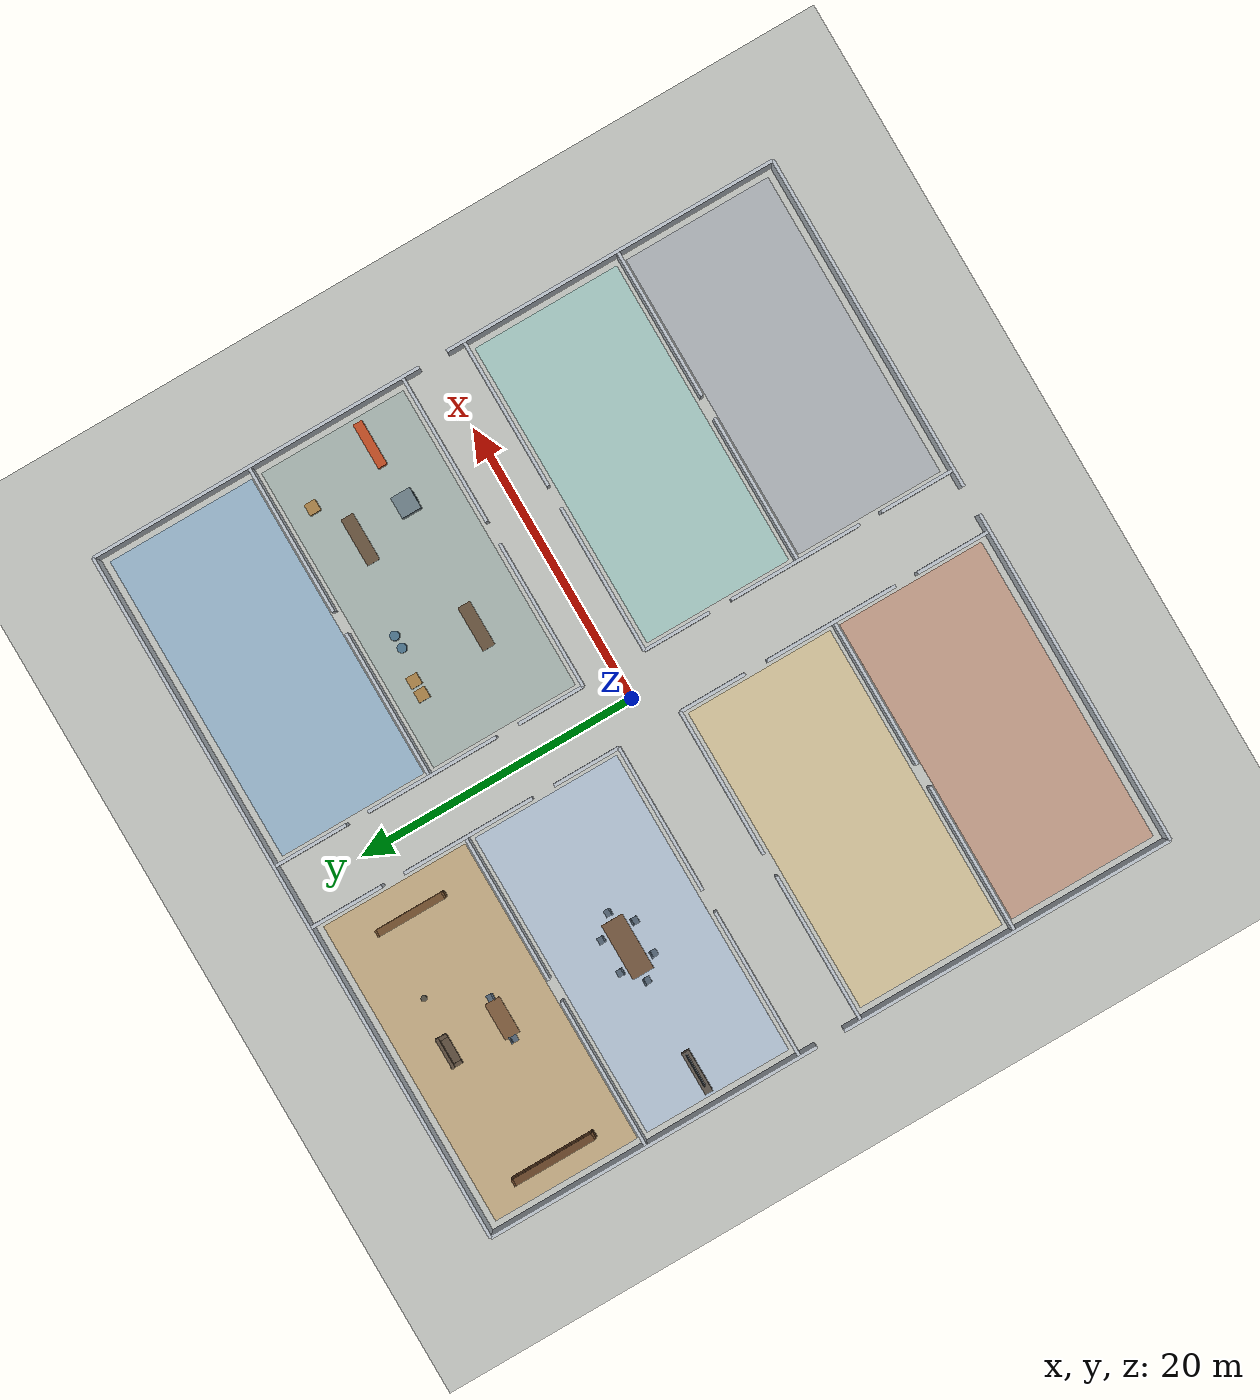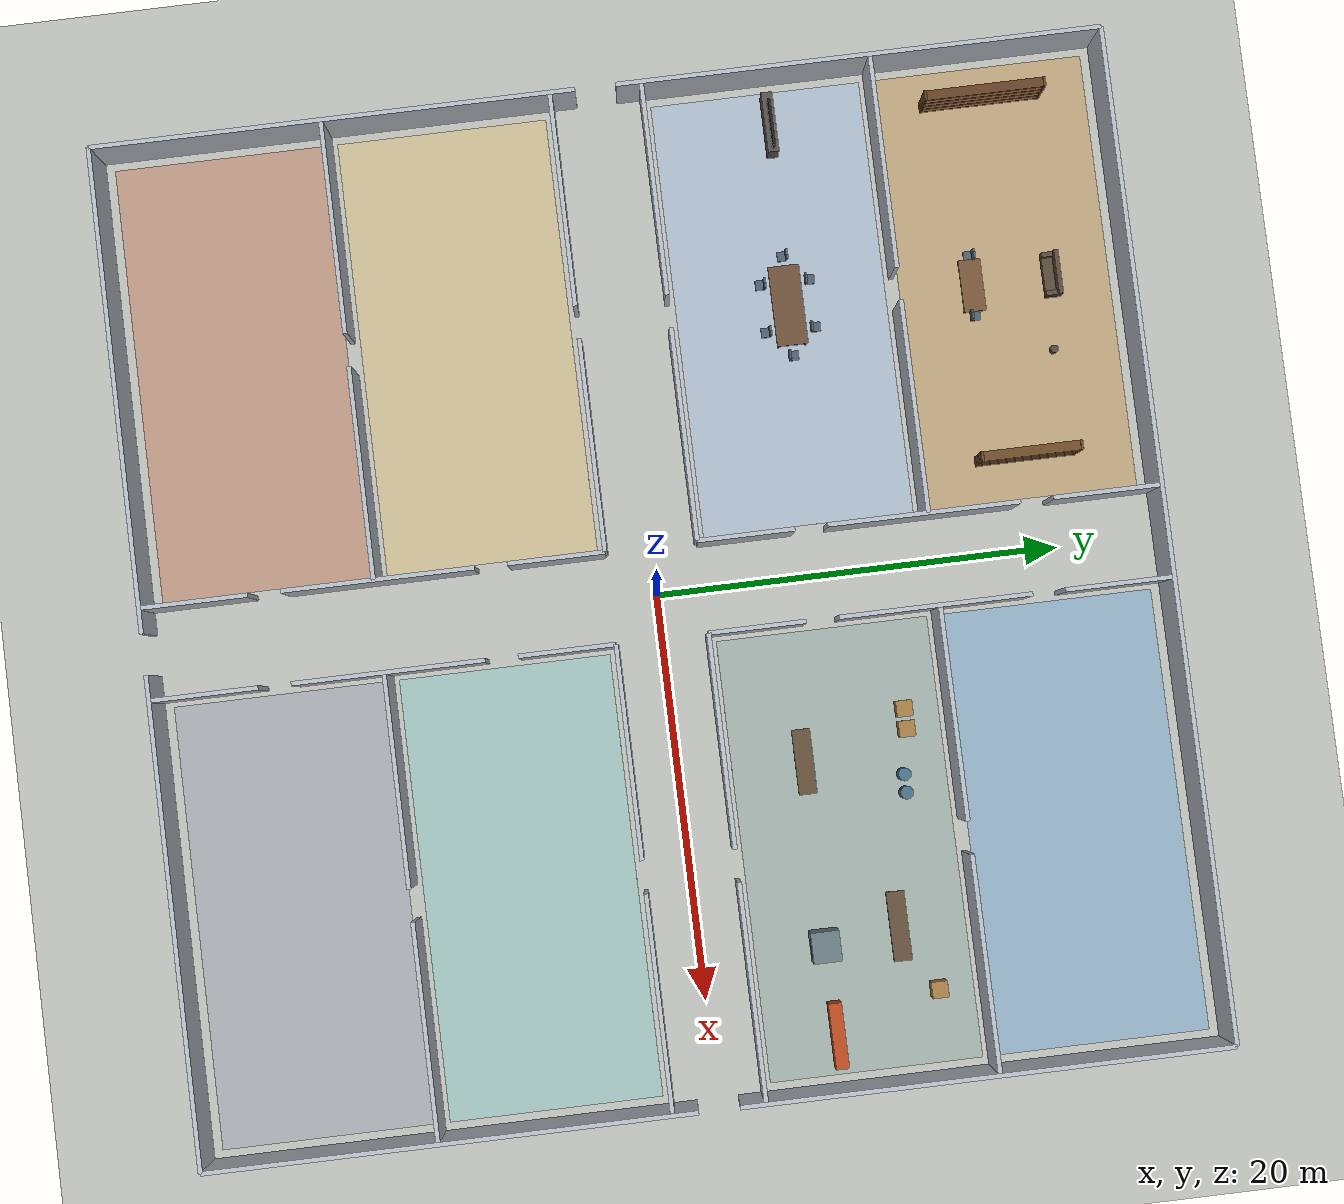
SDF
<sdf version="1.9">
 <world name="default">
  <model name="ground">
   <static>true</static>
   <link name="ground_link">
    <collision name="ground_collision">
     <geometry><plane><normal>0 0 1</normal><size>50 50</size></plane></geometry>
    </collision>
    <visual name="ground_visual">
     <geometry><plane><normal>0 0 1</normal><size>50 50</size></plane></geometry>
     <material><ambient>0.72 0.73 0.71 1</ambient><diffuse>0.72 0.73 0.71 1</diffuse></material>
    </visual>
   </link>
  </model>
  <model name="building_walls">
   <static>true</static>
   <link name="south_outer_01">
    <pose>-12.945 -24.890 1.600 0 0 0.0000</pose>
    <collision name="collision"><geometry><box><size>23.890 0.220 3.200</size></box></geometry></collision>
    <visual name="visual">
     <geometry><box><size>23.890 0.220 3.200</size></box></geometry>
     <material><ambient>0.70 0.73 0.76 1</ambient><diffuse>0.70 0.73 0.76 1</diffuse></material>
    </visual>
   </link>
   <link name="south_outer_02">
    <pose>12.945 -24.890 1.600 0 0 0.0000</pose>
    <collision name="collision"><geometry><box><size>23.890 0.220 3.200</size></box></geometry></collision>
    <visual name="visual">
     <geometry><box><size>23.890 0.220 3.200</size></box></geometry>
     <material><ambient>0.70 0.73 0.76 1</ambient><diffuse>0.70 0.73 0.76 1</diffuse></material>
    </visual>
   </link>
   <link name="north_outer_03">
    <pose>0.000 24.890 1.600 0 0 0.0000</pose>
    <collision name="collision"><geometry><box><size>49.780 0.220 3.200</size></box></geometry></collision>
    <visual name="visual">
     <geometry><box><size>49.780 0.220 3.200</size></box></geometry>
     <material><ambient>0.70 0.73 0.76 1</ambient><diffuse>0.70 0.73 0.76 1</diffuse></material>
    </visual>
   </link>
   <link name="west_outer_04">
    <pose>-24.890 -12.945 1.600 0 0 0.0000</pose>
    <collision name="collision"><geometry><box><size>0.220 23.890 3.200</size></box></geometry></collision>
    <visual name="visual">
     <geometry><box><size>0.220 23.890 3.200</size></box></geometry>
     <material><ambient>0.70 0.73 0.76 1</ambient><diffuse>0.70 0.73 0.76 1</diffuse></material>
    </visual>
   </link>
   <link name="west_outer_05">
    <pose>-24.890 12.945 1.600 0 0 0.0000</pose>
    <collision name="collision"><geometry><box><size>0.220 23.890 3.200</size></box></geometry></collision>
    <visual name="visual">
     <geometry><box><size>0.220 23.890 3.200</size></box></geometry>
     <material><ambient>0.70 0.73 0.76 1</ambient><diffuse>0.70 0.73 0.76 1</diffuse></material>
    </visual>
   </link>
   <link name="east_outer_06">
    <pose>24.890 -12.945 1.600 0 0 0.0000</pose>
    <collision name="collision"><geometry><box><size>0.220 23.890 3.200</size></box></geometry></collision>
    <visual name="visual">
     <geometry><box><size>0.220 23.890 3.200</size></box></geometry>
     <material><ambient>0.70 0.73 0.76 1</ambient><diffuse>0.70 0.73 0.76 1</diffuse></material>
    </visual>
   </link>
   <link name="east_outer_07">
    <pose>24.890 12.945 1.600 0 0 0.0000</pose>
    <collision name="collision"><geometry><box><size>0.220 23.890 3.200</size></box></geometry></collision>
    <visual name="visual">
     <geometry><box><size>0.220 23.890 3.200</size></box></geometry>
     <material><ambient>0.70 0.73 0.76 1</ambient><diffuse>0.70 0.73 0.76 1</diffuse></material>
    </visual>
   </link>
   <link name="west_hall_08">
    <pose>-2.250 -22.190 1.600 0 0 0.0000</pose>
    <collision name="collision"><geometry><box><size>0.220 5.180 3.200</size></box></geometry></collision>
    <visual name="visual">
     <geometry><box><size>0.220 5.180 3.200</size></box></geometry>
     <material><ambient>0.70 0.73 0.76 1</ambient><diffuse>0.70 0.73 0.76 1</diffuse></material>
    </visual>
   </link>
   <link name="west_hall_09">
    <pose>-2.250 -13.300 1.600 0 0 0.0000</pose>
    <collision name="collision"><geometry><box><size>0.220 9.400 3.200</size></box></geometry></collision>
    <visual name="visual">
     <geometry><box><size>0.220 9.400 3.200</size></box></geometry>
     <material><ambient>0.70 0.73 0.76 1</ambient><diffuse>0.70 0.73 0.76 1</diffuse></material>
    </visual>
   </link>
   <link name="west_hall_10">
    <pose>-2.250 -4.625 1.600 0.000 0.000 0.000</pose>
    <collision name="collision"><geometry><box><size>0.220 4.750 3.200</size></box></geometry></collision>
    <visual name="visual">
     <geometry><box><size>0.220 4.750 3.200</size></box></geometry>
     <material><ambient>0.70 0.73 0.76 1</ambient><diffuse>0.70 0.73 0.76 1</diffuse></material>
    </visual>
   </link>
   <link name="west_hall_11">
    <pose>-2.250 13.300 1.600 0 0 0.0000</pose>
    <collision name="collision"><geometry><box><size>0.220 9.400 3.200</size></box></geometry></collision>
    <visual name="visual">
     <geometry><box><size>0.220 9.400 3.200</size></box></geometry>
     <material><ambient>0.70 0.73 0.76 1</ambient><diffuse>0.70 0.73 0.76 1</diffuse></material>
    </visual>
   </link>
   <link name="west_hall_12">
    <pose>-2.250 22.190 1.600 0 0 0.0000</pose>
    <collision name="collision"><geometry><box><size>0.220 5.180 3.200</size></box></geometry></collision>
    <visual name="visual">
     <geometry><box><size>0.220 5.180 3.200</size></box></geometry>
     <material><ambient>0.70 0.73 0.76 1</ambient><diffuse>0.70 0.73 0.76 1</diffuse></material>
    </visual>
   </link>
   <link name="east_hall_13">
    <pose>2.250 -22.190 1.600 0 0 0.0000</pose>
    <collision name="collision"><geometry><box><size>0.220 5.180 3.200</size></box></geometry></collision>
    <visual name="visual">
     <geometry><box><size>0.220 5.180 3.200</size></box></geometry>
     <material><ambient>0.70 0.73 0.76 1</ambient><diffuse>0.70 0.73 0.76 1</diffuse></material>
    </visual>
   </link>
   <link name="east_hall_14">
    <pose>2.250 -13.300 1.600 0 0 0.0000</pose>
    <collision name="collision"><geometry><box><size>0.220 9.400 3.200</size></box></geometry></collision>
    <visual name="visual">
     <geometry><box><size>0.220 9.400 3.200</size></box></geometry>
     <material><ambient>0.70 0.73 0.76 1</ambient><diffuse>0.70 0.73 0.76 1</diffuse></material>
    </visual>
   </link>
   <link name="east_hall_15">
    <pose>2.250 -4.625 1.600 0.000 0.000 0.000</pose>
    <collision name="collision"><geometry><box><size>0.220 4.750 3.200</size></box></geometry></collision>
    <visual name="visual">
     <geometry><box><size>0.220 4.750 3.200</size></box></geometry>
     <material><ambient>0.70 0.73 0.76 1</ambient><diffuse>0.70 0.73 0.76 1</diffuse></material>
    </visual>
   </link>
   <link name="east_hall_16">
    <pose>2.250 13.300 1.600 0 0 0.0000</pose>
    <collision name="collision"><geometry><box><size>0.220 9.400 3.200</size></box></geometry></collision>
    <visual name="visual">
     <geometry><box><size>0.220 9.400 3.200</size></box></geometry>
     <material><ambient>0.70 0.73 0.76 1</ambient><diffuse>0.70 0.73 0.76 1</diffuse></material>
    </visual>
   </link>
   <link name="east_hall_17">
    <pose>2.250 22.190 1.600 0 0 0.0000</pose>
    <collision name="collision"><geometry><box><size>0.220 5.180 3.200</size></box></geometry></collision>
    <visual name="visual">
     <geometry><box><size>0.220 5.180 3.200</size></box></geometry>
     <material><ambient>0.70 0.73 0.76 1</ambient><diffuse>0.70 0.73 0.76 1</diffuse></material>
    </visual>
   </link>
   <link name="south_hall_18">
    <pose>-19.540 -2.250 1.600 0 0 0.0000</pose>
    <collision name="collision"><geometry><box><size>10.480 0.220 3.200</size></box></geometry></collision>
    <visual name="visual">
     <geometry><box><size>10.480 0.220 3.200</size></box></geometry>
     <material><ambient>0.70 0.73 0.76 1</ambient><diffuse>0.70 0.73 0.76 1</diffuse></material>
    </visual>
   </link>
   <link name="south_hall_19">
    <pose>-7.475 -2.250 1.600 0.000 0.000 0.000</pose>
    <collision name="collision"><geometry><box><size>10.450 0.220 3.200</size></box></geometry></collision>
    <visual name="visual">
     <geometry><box><size>10.450 0.220 3.200</size></box></geometry>
     <material><ambient>0.70 0.73 0.76 1</ambient><diffuse>0.70 0.73 0.76 1</diffuse></material>
    </visual>
   </link>
   <link name="south_hall_20">
    <pose>19.540 -2.250 1.600 0 0 0.0000</pose>
    <collision name="collision"><geometry><box><size>10.480 0.220 3.200</size></box></geometry></collision>
    <visual name="visual">
     <geometry><box><size>10.480 0.220 3.200</size></box></geometry>
     <material><ambient>0.70 0.73 0.76 1</ambient><diffuse>0.70 0.73 0.76 1</diffuse></material>
    </visual>
   </link>
   <link name="north_hall_21">
    <pose>-19.540 2.250 1.600 0 0 0.0000</pose>
    <collision name="collision"><geometry><box><size>10.480 0.220 3.200</size></box></geometry></collision>
    <visual name="visual">
     <geometry><box><size>10.480 0.220 3.200</size></box></geometry>
     <material><ambient>0.70 0.73 0.76 1</ambient><diffuse>0.70 0.73 0.76 1</diffuse></material>
    </visual>
   </link>
   <link name="north_hall_22">
    <pose>-7.475 2.250 1.600 0.000 0.000 0.000</pose>
    <collision name="collision"><geometry><box><size>10.450 0.220 3.200</size></box></geometry></collision>
    <visual name="visual">
     <geometry><box><size>10.450 0.220 3.200</size></box></geometry>
     <material><ambient>0.70 0.73 0.76 1</ambient><diffuse>0.70 0.73 0.76 1</diffuse></material>
    </visual>
   </link>
   <link name="north_hall_23">
    <pose>19.540 2.250 1.600 0 0 0.0000</pose>
    <collision name="collision"><geometry><box><size>10.480 0.220 3.200</size></box></geometry></collision>
    <visual name="visual">
     <geometry><box><size>10.480 0.220 3.200</size></box></geometry>
     <material><ambient>0.70 0.73 0.76 1</ambient><diffuse>0.70 0.73 0.76 1</diffuse></material>
    </visual>
   </link>
   <link name="north_partition_west_24">
    <pose>-19.540 13.500 1.600 0 0 0.0000</pose>
    <collision name="collision"><geometry><box><size>10.480 0.220 3.200</size></box></geometry></collision>
    <visual name="visual">
     <geometry><box><size>10.480 0.220 3.200</size></box></geometry>
     <material><ambient>0.70 0.73 0.76 1</ambient><diffuse>0.70 0.73 0.76 1</diffuse></material>
    </visual>
   </link>
   <link name="north_partition_west_25">
    <pose>-7.475 13.500 1.600 0 0 0.0000</pose>
    <collision name="collision"><geometry><box><size>10.450 0.220 3.200</size></box></geometry></collision>
    <visual name="visual">
     <geometry><box><size>10.450 0.220 3.200</size></box></geometry>
     <material><ambient>0.70 0.73 0.76 1</ambient><diffuse>0.70 0.73 0.76 1</diffuse></material>
    </visual>
   </link>
   <link name="north_partition_east_26">
    <pose>7.475 13.500 1.600 0 0 0.0000</pose>
    <collision name="collision"><geometry><box><size>10.450 0.220 3.200</size></box></geometry></collision>
    <visual name="visual">
     <geometry><box><size>10.450 0.220 3.200</size></box></geometry>
     <material><ambient>0.70 0.73 0.76 1</ambient><diffuse>0.70 0.73 0.76 1</diffuse></material>
    </visual>
   </link>
   <link name="north_partition_east_27">
    <pose>19.540 13.500 1.600 0 0 0.0000</pose>
    <collision name="collision"><geometry><box><size>10.480 0.220 3.200</size></box></geometry></collision>
    <visual name="visual">
     <geometry><box><size>10.480 0.220 3.200</size></box></geometry>
     <material><ambient>0.70 0.73 0.76 1</ambient><diffuse>0.70 0.73 0.76 1</diffuse></material>
    </visual>
   </link>
   <link name="south_partition_west_28">
    <pose>-19.540 -13.500 1.600 0 0 0.0000</pose>
    <collision name="collision"><geometry><box><size>10.480 0.220 3.200</size></box></geometry></collision>
    <visual name="visual">
     <geometry><box><size>10.480 0.220 3.200</size></box></geometry>
     <material><ambient>0.70 0.73 0.76 1</ambient><diffuse>0.70 0.73 0.76 1</diffuse></material>
    </visual>
   </link>
   <link name="south_partition_west_29">
    <pose>-7.475 -13.500 1.600 0 0 0.0000</pose>
    <collision name="collision"><geometry><box><size>10.450 0.220 3.200</size></box></geometry></collision>
    <visual name="visual">
     <geometry><box><size>10.450 0.220 3.200</size></box></geometry>
     <material><ambient>0.70 0.73 0.76 1</ambient><diffuse>0.70 0.73 0.76 1</diffuse></material>
    </visual>
   </link>
   <link name="south_partition_east_30">
    <pose>7.475 -13.500 1.600 0 0 0.0000</pose>
    <collision name="collision"><geometry><box><size>10.450 0.220 3.200</size></box></geometry></collision>
    <visual name="visual">
     <geometry><box><size>10.450 0.220 3.200</size></box></geometry>
     <material><ambient>0.70 0.73 0.76 1</ambient><diffuse>0.70 0.73 0.76 1</diffuse></material>
    </visual>
   </link>
   <link name="south_partition_east_31">
    <pose>19.540 -13.500 1.600 0 0 0.0000</pose>
    <collision name="collision"><geometry><box><size>10.480 0.220 3.200</size></box></geometry></collision>
    <visual name="visual">
     <geometry><box><size>10.480 0.220 3.200</size></box></geometry>
     <material><ambient>0.70 0.73 0.76 1</ambient><diffuse>0.70 0.73 0.76 1</diffuse></material>
    </visual>
   </link>
   <link name="west_hall_10_b">
    <pose>-2.250 4.625 1.600 0.000 0.000 0.000</pose>
    <collision name="collision"><geometry><box><size>0.220 4.750 3.200</size></box></geometry></collision>
    <visual name="visual">
     <geometry><box><size>0.220 4.750 3.200</size></box></geometry>
     <material><ambient>0.70 0.73 0.76 1</ambient><diffuse>0.70 0.73 0.76 1</diffuse></material>
    </visual>
   </link>
   <link name="east_hall_15_b">
    <pose>2.250 4.625 1.600 0.000 0.000 0.000</pose>
    <collision name="collision"><geometry><box><size>0.220 4.750 3.200</size></box></geometry></collision>
    <visual name="visual">
     <geometry><box><size>0.220 4.750 3.200</size></box></geometry>
     <material><ambient>0.70 0.73 0.76 1</ambient><diffuse>0.70 0.73 0.76 1</diffuse></material>
    </visual>
   </link>
   <link name="south_hall_19_b">
    <pose>7.475 -2.250 1.600 0.000 0.000 0.000</pose>
    <collision name="collision"><geometry><box><size>10.450 0.220 3.200</size></box></geometry></collision>
    <visual name="visual">
     <geometry><box><size>10.450 0.220 3.200</size></box></geometry>
     <material><ambient>0.70 0.73 0.76 1</ambient><diffuse>0.70 0.73 0.76 1</diffuse></material>
    </visual>
   </link>
   <link name="north_hall_22_b">
    <pose>7.475 2.250 1.600 0.000 0.000 0.000</pose>
    <collision name="collision"><geometry><box><size>10.450 0.220 3.200</size></box></geometry></collision>
    <visual name="visual">
     <geometry><box><size>10.450 0.220 3.200</size></box></geometry>
     <material><ambient>0.70 0.73 0.76 1</ambient><diffuse>0.70 0.73 0.76 1</diffuse></material>
    </visual>
   </link>
  </model>
  <model name="room_floor_accents">
   <static>true</static>
   <link name="meeting_room_floor">
    <pose>-13.500 7.900 0.004 0 0 0.0000</pose>
    <visual name="visual">
     <geometry><box><size>21.800 10.500 0.008</size></box></geometry>
     <material><ambient>0.66 0.72 0.78 1</ambient><diffuse>0.66 0.72 0.78 1</diffuse></material>
    </visual>
   </link>
   <link name="library_floor">
    <pose>-13.500 19.100 0.004 0 0 0.0000</pose>
    <visual name="visual">
     <geometry><box><size>21.800 10.500 0.008</size></box></geometry>
     <material><ambient>0.72 0.63 0.48 1</ambient><diffuse>0.72 0.63 0.48 1</diffuse></material>
    </visual>
   </link>
   <link name="workshop_floor">
    <pose>13.500 7.900 0.004 0 0 0.0000</pose>
    <visual name="visual">
     <geometry><box><size>21.800 10.500 0.008</size></box></geometry>
     <material><ambient>0.62 0.67 0.65 1</ambient><diffuse>0.62 0.67 0.65 1</diffuse></material>
    </visual>
   </link>
   <link name="server_lab_floor">
    <pose>13.500 19.100 0.004 0 0 0.0000</pose>
    <visual name="visual">
     <geometry><box><size>21.800 10.500 0.008</size></box></geometry>
     <material><ambient>0.56 0.67 0.75 1</ambient><diffuse>0.56 0.67 0.75 1</diffuse></material>
    </visual>
   </link>
   <link name="kitchen_floor">
    <pose>-13.500 -7.900 0.004 0 0 0.0000</pose>
    <visual name="visual">
     <geometry><box><size>21.800 10.500 0.008</size></box></geometry>
     <material><ambient>0.78 0.72 0.57 1</ambient><diffuse>0.78 0.72 0.57 1</diffuse></material>
    </visual>
   </link>
   <link name="lounge_floor">
    <pose>-13.500 -19.100 0.004 0 0 0.0000</pose>
    <visual name="visual">
     <geometry><box><size>21.800 10.500 0.008</size></box></geometry>
     <material><ambient>0.72 0.58 0.50 1</ambient><diffuse>0.72 0.58 0.50 1</diffuse></material>
    </visual>
   </link>
   <link name="clinic_floor">
    <pose>13.500 -7.900 0.004 0 0 0.0000</pose>
    <visual name="visual">
     <geometry><box><size>21.800 10.500 0.008</size></box></geometry>
     <material><ambient>0.61 0.74 0.72 1</ambient><diffuse>0.61 0.74 0.72 1</diffuse></material>
    </visual>
   </link>
   <link name="warehouse_floor">
    <pose>13.500 -19.100 0.004 0 0 0.0000</pose>
    <visual name="visual">
     <geometry><box><size>21.800 10.500 0.008</size></box></geometry>
     <material><ambient>0.64 0.66 0.68 1</ambient><diffuse>0.64 0.66 0.68 1</diffuse></material>
    </visual>
   </link>
  </model>
  <model name="meeting_room_furniture">
   <static>true</static>
   <link name="conference_table_top">
    <pose>-13.500 8.200 0.720 0 0 0.0000</pose>
    <collision name="collision"><geometry><box><size>4.000 1.550 0.120</size></box></geometry></collision>
    <visual name="visual">
     <geometry><box><size>4.000 1.550 0.120</size></box></geometry>
     <material><ambient>0.42 0.31 0.22 1</ambient><diffuse>0.42 0.31 0.22 1</diffuse></material>
    </visual>
   </link>
   <link name="conference_table_leg_0_0">
    <pose>-15.400 7.525 0.330 0 0 0.0000</pose>
    <collision name="collision"><geometry><box><size>0.100 0.100 0.660</size></box></geometry></collision>
    <visual name="visual">
     <geometry><box><size>0.100 0.100 0.660</size></box></geometry>
     <material><ambient>0.30 0.28 0.25 1</ambient><diffuse>0.30 0.28 0.25 1</diffuse></material>
    </visual>
   </link>
   <link name="conference_table_leg_0_1">
    <pose>-15.400 8.875 0.330 0 0 0.0000</pose>
    <collision name="collision"><geometry><box><size>0.100 0.100 0.660</size></box></geometry></collision>
    <visual name="visual">
     <geometry><box><size>0.100 0.100 0.660</size></box></geometry>
     <material><ambient>0.30 0.28 0.25 1</ambient><diffuse>0.30 0.28 0.25 1</diffuse></material>
    </visual>
   </link>
   <link name="conference_table_leg_1_0">
    <pose>-11.600 7.525 0.330 0 0 0.0000</pose>
    <collision name="collision"><geometry><box><size>0.100 0.100 0.660</size></box></geometry></collision>
    <visual name="visual">
     <geometry><box><size>0.100 0.100 0.660</size></box></geometry>
     <material><ambient>0.30 0.28 0.25 1</ambient><diffuse>0.30 0.28 0.25 1</diffuse></material>
    </visual>
   </link>
   <link name="conference_table_leg_1_1">
    <pose>-11.600 8.875 0.330 0 0 0.0000</pose>
    <collision name="collision"><geometry><box><size>0.100 0.100 0.660</size></box></geometry></collision>
    <visual name="visual">
     <geometry><box><size>0.100 0.100 0.660</size></box></geometry>
     <material><ambient>0.30 0.28 0.25 1</ambient><diffuse>0.30 0.28 0.25 1</diffuse></material>
    </visual>
   </link>
   <link name="meeting_chair_0_seat">
    <pose>-16.000 8.200 0.520 0 0 0.0000</pose>
    <collision name="collision"><geometry><box><size>0.480 0.460 0.100</size></box></geometry></collision>
    <visual name="visual">
     <geometry><box><size>0.480 0.460 0.100</size></box></geometry>
     <material><ambient>0.30 0.36 0.42 1</ambient><diffuse>0.30 0.36 0.42 1</diffuse></material>
    </visual>
   </link>
   <link name="meeting_chair_0_back">
    <pose>-16.000 8.420 0.910 0 0 0.0000</pose>
    <collision name="collision"><geometry><box><size>0.480 0.100 0.680</size></box></geometry></collision>
    <visual name="visual">
     <geometry><box><size>0.480 0.100 0.680</size></box></geometry>
     <material><ambient>0.30 0.36 0.42 1</ambient><diffuse>0.30 0.36 0.42 1</diffuse></material>
    </visual>
   </link>
   <link name="meeting_chair_1_seat">
    <pose>-14.700 6.950 0.520 0 0 0.0000</pose>
    <collision name="collision"><geometry><box><size>0.480 0.460 0.100</size></box></geometry></collision>
    <visual name="visual">
     <geometry><box><size>0.480 0.460 0.100</size></box></geometry>
     <material><ambient>0.30 0.36 0.42 1</ambient><diffuse>0.30 0.36 0.42 1</diffuse></material>
    </visual>
   </link>
   <link name="meeting_chair_1_back">
    <pose>-14.700 7.170 0.910 0 0 0.0000</pose>
    <collision name="collision"><geometry><box><size>0.480 0.100 0.680</size></box></geometry></collision>
    <visual name="visual">
     <geometry><box><size>0.480 0.100 0.680</size></box></geometry>
     <material><ambient>0.30 0.36 0.42 1</ambient><diffuse>0.30 0.36 0.42 1</diffuse></material>
    </visual>
   </link>
   <link name="meeting_chair_2_seat">
    <pose>-12.300 6.950 0.520 0 0 0.0000</pose>
    <collision name="collision"><geometry><box><size>0.480 0.460 0.100</size></box></geometry></collision>
    <visual name="visual">
     <geometry><box><size>0.480 0.460 0.100</size></box></geometry>
     <material><ambient>0.30 0.36 0.42 1</ambient><diffuse>0.30 0.36 0.42 1</diffuse></material>
    </visual>
   </link>
   <link name="meeting_chair_2_back">
    <pose>-12.300 7.170 0.910 0 0 0.0000</pose>
    <collision name="collision"><geometry><box><size>0.480 0.100 0.680</size></box></geometry></collision>
    <visual name="visual">
     <geometry><box><size>0.480 0.100 0.680</size></box></geometry>
     <material><ambient>0.30 0.36 0.42 1</ambient><diffuse>0.30 0.36 0.42 1</diffuse></material>
    </visual>
   </link>
   <link name="meeting_chair_3_seat">
    <pose>-11.000 8.200 0.520 0 0 3.1416</pose>
    <collision name="collision"><geometry><box><size>0.480 0.460 0.100</size></box></geometry></collision>
    <visual name="visual">
     <geometry><box><size>0.480 0.460 0.100</size></box></geometry>
     <material><ambient>0.30 0.36 0.42 1</ambient><diffuse>0.30 0.36 0.42 1</diffuse></material>
    </visual>
   </link>
   <link name="meeting_chair_3_back">
    <pose>-11.000 7.980 0.910 0 0 3.1416</pose>
    <collision name="collision"><geometry><box><size>0.480 0.100 0.680</size></box></geometry></collision>
    <visual name="visual">
     <geometry><box><size>0.480 0.100 0.680</size></box></geometry>
     <material><ambient>0.30 0.36 0.42 1</ambient><diffuse>0.30 0.36 0.42 1</diffuse></material>
    </visual>
   </link>
   <link name="meeting_chair_4_seat">
    <pose>-14.700 9.450 0.520 0 0 3.1416</pose>
    <collision name="collision"><geometry><box><size>0.480 0.460 0.100</size></box></geometry></collision>
    <visual name="visual">
     <geometry><box><size>0.480 0.460 0.100</size></box></geometry>
     <material><ambient>0.30 0.36 0.42 1</ambient><diffuse>0.30 0.36 0.42 1</diffuse></material>
    </visual>
   </link>
   <link name="meeting_chair_4_back">
    <pose>-14.700 9.230 0.910 0 0 3.1416</pose>
    <collision name="collision"><geometry><box><size>0.480 0.100 0.680</size></box></geometry></collision>
    <visual name="visual">
     <geometry><box><size>0.480 0.100 0.680</size></box></geometry>
     <material><ambient>0.30 0.36 0.42 1</ambient><diffuse>0.30 0.36 0.42 1</diffuse></material>
    </visual>
   </link>
   <link name="meeting_chair_5_seat">
    <pose>-12.300 9.450 0.520 0 0 3.1416</pose>
    <collision name="collision"><geometry><box><size>0.480 0.460 0.100</size></box></geometry></collision>
    <visual name="visual">
     <geometry><box><size>0.480 0.460 0.100</size></box></geometry>
     <material><ambient>0.30 0.36 0.42 1</ambient><diffuse>0.30 0.36 0.42 1</diffuse></material>
    </visual>
   </link>
   <link name="meeting_chair_5_back">
    <pose>-12.300 9.230 0.910 0 0 3.1416</pose>
    <collision name="collision"><geometry><box><size>0.480 0.100 0.680</size></box></geometry></collision>
    <visual name="visual">
     <geometry><box><size>0.480 0.100 0.680</size></box></geometry>
     <material><ambient>0.30 0.36 0.42 1</ambient><diffuse>0.30 0.36 0.42 1</diffuse></material>
    </visual>
   </link>
   <link name="meeting_credenza">
    <pose>-22.600 8.400 0.700 0 0 1.5708</pose>
    <collision name="collision"><geometry><box><size>0.550 3.000 1.400</size></box></geometry></collision>
    <visual name="visual">
     <geometry><box><size>0.550 3.000 1.400</size></box></geometry>
     <material><ambient>0.34 0.31 0.28 1</ambient><diffuse>0.34 0.31 0.28 1</diffuse></material>
    </visual>
   </link>
   <link name="meeting_display">
    <pose>-22.400 8.400 1.750 0 0 1.5708</pose>
    <collision name="collision"><geometry><box><size>0.120 2.300 1.100</size></box></geometry></collision>
    <visual name="visual">
     <geometry><box><size>0.120 2.300 1.100</size></box></geometry>
     <material><ambient>0.10 0.12 0.14 1</ambient><diffuse>0.10 0.12 0.14 1</diffuse></material>
    </visual>
   </link>
  </model>
  <model name="library_furniture">
   <static>true</static>
   <link name="library_shelf_west_shelf_0">
    <pose>-22.700 19.000 0.200 0 0 1.5708</pose>
    <collision name="collision"><geometry><box><size>6.000 0.480 0.100</size></box></geometry></collision>
    <visual name="visual">
     <geometry><box><size>6.000 0.480 0.100</size></box></geometry>
     <material><ambient>0.38 0.25 0.14 1</ambient><diffuse>0.38 0.25 0.14 1</diffuse></material>
    </visual>
   </link>
   <link name="library_shelf_west_shelf_1">
    <pose>-22.700 19.000 0.750 0 0 1.5708</pose>
    <collision name="collision"><geometry><box><size>6.000 0.480 0.100</size></box></geometry></collision>
    <visual name="visual">
     <geometry><box><size>6.000 0.480 0.100</size></box></geometry>
     <material><ambient>0.38 0.25 0.14 1</ambient><diffuse>0.38 0.25 0.14 1</diffuse></material>
    </visual>
   </link>
   <link name="library_shelf_west_shelf_2">
    <pose>-22.700 19.000 1.300 0 0 1.5708</pose>
    <collision name="collision"><geometry><box><size>6.000 0.480 0.100</size></box></geometry></collision>
    <visual name="visual">
     <geometry><box><size>6.000 0.480 0.100</size></box></geometry>
     <material><ambient>0.38 0.25 0.14 1</ambient><diffuse>0.38 0.25 0.14 1</diffuse></material>
    </visual>
   </link>
   <link name="library_shelf_west_shelf_3">
    <pose>-22.700 19.000 1.850 0 0 1.5708</pose>
    <collision name="collision"><geometry><box><size>6.000 0.480 0.100</size></box></geometry></collision>
    <visual name="visual">
     <geometry><box><size>6.000 0.480 0.100</size></box></geometry>
     <material><ambient>0.38 0.25 0.14 1</ambient><diffuse>0.38 0.25 0.14 1</diffuse></material>
    </visual>
   </link>
   <link name="library_shelf_west_shelf_4">
    <pose>-22.700 19.000 2.400 0 0 1.5708</pose>
    <collision name="collision"><geometry><box><size>6.000 0.480 0.100</size></box></geometry></collision>
    <visual name="visual">
     <geometry><box><size>6.000 0.480 0.100</size></box></geometry>
     <material><ambient>0.38 0.25 0.14 1</ambient><diffuse>0.38 0.25 0.14 1</diffuse></material>
    </visual>
   </link>
   <link name="library_shelf_west_side_0">
    <pose>-22.700 16.060 1.250 0 0 1.5708</pose>
    <collision name="collision"><geometry><box><size>0.120 0.480 2.500</size></box></geometry></collision>
    <visual name="visual">
     <geometry><box><size>0.120 0.480 2.500</size></box></geometry>
     <material><ambient>0.38 0.25 0.14 1</ambient><diffuse>0.38 0.25 0.14 1</diffuse></material>
    </visual>
   </link>
   <link name="library_shelf_west_side_1">
    <pose>-22.700 21.940 1.250 0 0 1.5708</pose>
    <collision name="collision"><geometry><box><size>0.120 0.480 2.500</size></box></geometry></collision>
    <visual name="visual">
     <geometry><box><size>0.120 0.480 2.500</size></box></geometry>
     <material><ambient>0.38 0.25 0.14 1</ambient><diffuse>0.38 0.25 0.14 1</diffuse></material>
    </visual>
   </link>
   <link name="library_shelf_east_shelf_0">
    <pose>-4.700 19.000 0.200 0 0 1.5708</pose>
    <collision name="collision"><geometry><box><size>5.000 0.480 0.100</size></box></geometry></collision>
    <visual name="visual">
     <geometry><box><size>5.000 0.480 0.100</size></box></geometry>
     <material><ambient>0.42 0.29 0.16 1</ambient><diffuse>0.42 0.29 0.16 1</diffuse></material>
    </visual>
   </link>
   <link name="library_shelf_east_shelf_1">
    <pose>-4.700 19.000 0.750 0 0 1.5708</pose>
    <collision name="collision"><geometry><box><size>5.000 0.480 0.100</size></box></geometry></collision>
    <visual name="visual">
     <geometry><box><size>5.000 0.480 0.100</size></box></geometry>
     <material><ambient>0.42 0.29 0.16 1</ambient><diffuse>0.42 0.29 0.16 1</diffuse></material>
    </visual>
   </link>
   <link name="library_shelf_east_shelf_2">
    <pose>-4.700 19.000 1.300 0 0 1.5708</pose>
    <collision name="collision"><geometry><box><size>5.000 0.480 0.100</size></box></geometry></collision>
    <visual name="visual">
     <geometry><box><size>5.000 0.480 0.100</size></box></geometry>
     <material><ambient>0.42 0.29 0.16 1</ambient><diffuse>0.42 0.29 0.16 1</diffuse></material>
    </visual>
   </link>
   <link name="library_shelf_east_shelf_3">
    <pose>-4.700 19.000 1.850 0 0 1.5708</pose>
    <collision name="collision"><geometry><box><size>5.000 0.480 0.100</size></box></geometry></collision>
    <visual name="visual">
     <geometry><box><size>5.000 0.480 0.100</size></box></geometry>
     <material><ambient>0.42 0.29 0.16 1</ambient><diffuse>0.42 0.29 0.16 1</diffuse></material>
    </visual>
   </link>
   <link name="library_shelf_east_shelf_4">
    <pose>-4.700 19.000 2.400 0 0 1.5708</pose>
    <collision name="collision"><geometry><box><size>5.000 0.480 0.100</size></box></geometry></collision>
    <visual name="visual">
     <geometry><box><size>5.000 0.480 0.100</size></box></geometry>
     <material><ambient>0.42 0.29 0.16 1</ambient><diffuse>0.42 0.29 0.16 1</diffuse></material>
    </visual>
   </link>
   <link name="library_shelf_east_side_0">
    <pose>-4.700 16.560 1.250 0 0 1.5708</pose>
    <collision name="collision"><geometry><box><size>0.120 0.480 2.500</size></box></geometry></collision>
    <visual name="visual">
     <geometry><box><size>0.120 0.480 2.500</size></box></geometry>
     <material><ambient>0.42 0.29 0.16 1</ambient><diffuse>0.42 0.29 0.16 1</diffuse></material>
    </visual>
   </link>
   <link name="library_shelf_east_side_1">
    <pose>-4.700 21.440 1.250 0 0 1.5708</pose>
    <collision name="collision"><geometry><box><size>0.120 0.480 2.500</size></box></geometry></collision>
    <visual name="visual">
     <geometry><box><size>0.120 0.480 2.500</size></box></geometry>
     <material><ambient>0.42 0.29 0.16 1</ambient><diffuse>0.42 0.29 0.16 1</diffuse></material>
    </visual>
   </link>
   <link name="reading_table_top">
    <pose>-13.400 17.400 0.660 0 0 0.0000</pose>
    <collision name="collision"><geometry><box><size>2.600 1.100 0.120</size></box></geometry></collision>
    <visual name="visual">
     <geometry><box><size>2.600 1.100 0.120</size></box></geometry>
     <material><ambient>0.46 0.33 0.21 1</ambient><diffuse>0.46 0.33 0.21 1</diffuse></material>
    </visual>
   </link>
   <link name="reading_table_leg_0_0">
    <pose>-14.600 16.950 0.300 0 0 0.0000</pose>
    <collision name="collision"><geometry><box><size>0.100 0.100 0.600</size></box></geometry></collision>
    <visual name="visual">
     <geometry><box><size>0.100 0.100 0.600</size></box></geometry>
     <material><ambient>0.30 0.28 0.25 1</ambient><diffuse>0.30 0.28 0.25 1</diffuse></material>
    </visual>
   </link>
   <link name="reading_table_leg_0_1">
    <pose>-14.600 17.850 0.300 0 0 0.0000</pose>
    <collision name="collision"><geometry><box><size>0.100 0.100 0.600</size></box></geometry></collision>
    <visual name="visual">
     <geometry><box><size>0.100 0.100 0.600</size></box></geometry>
     <material><ambient>0.30 0.28 0.25 1</ambient><diffuse>0.30 0.28 0.25 1</diffuse></material>
    </visual>
   </link>
   <link name="reading_table_leg_1_0">
    <pose>-12.200 16.950 0.300 0 0 0.0000</pose>
    <collision name="collision"><geometry><box><size>0.100 0.100 0.600</size></box></geometry></collision>
    <visual name="visual">
     <geometry><box><size>0.100 0.100 0.600</size></box></geometry>
     <material><ambient>0.30 0.28 0.25 1</ambient><diffuse>0.30 0.28 0.25 1</diffuse></material>
    </visual>
   </link>
   <link name="reading_table_leg_1_1">
    <pose>-12.200 17.850 0.300 0 0 0.0000</pose>
    <collision name="collision"><geometry><box><size>0.100 0.100 0.600</size></box></geometry></collision>
    <visual name="visual">
     <geometry><box><size>0.100 0.100 0.600</size></box></geometry>
     <material><ambient>0.30 0.28 0.25 1</ambient><diffuse>0.30 0.28 0.25 1</diffuse></material>
    </visual>
   </link>
   <link name="reading_chair_a_seat">
    <pose>-14.900 17.400 0.520 0 0 0.0000</pose>
    <collision name="collision"><geometry><box><size>0.480 0.460 0.100</size></box></geometry></collision>
    <visual name="visual">
     <geometry><box><size>0.480 0.460 0.100</size></box></geometry>
     <material><ambient>0.30 0.36 0.42 1</ambient><diffuse>0.30 0.36 0.42 1</diffuse></material>
    </visual>
   </link>
   <link name="reading_chair_a_back">
    <pose>-14.900 17.620 0.910 0 0 0.0000</pose>
    <collision name="collision"><geometry><box><size>0.480 0.100 0.680</size></box></geometry></collision>
    <visual name="visual">
     <geometry><box><size>0.480 0.100 0.680</size></box></geometry>
     <material><ambient>0.30 0.36 0.42 1</ambient><diffuse>0.30 0.36 0.42 1</diffuse></material>
    </visual>
   </link>
   <link name="reading_chair_b_seat">
    <pose>-11.900 17.400 0.520 0 0 3.1416</pose>
    <collision name="collision"><geometry><box><size>0.480 0.460 0.100</size></box></geometry></collision>
    <visual name="visual">
     <geometry><box><size>0.480 0.460 0.100</size></box></geometry>
     <material><ambient>0.30 0.36 0.42 1</ambient><diffuse>0.30 0.36 0.42 1</diffuse></material>
    </visual>
   </link>
   <link name="reading_chair_b_back">
    <pose>-11.900 17.180 0.910 0 0 3.1416</pose>
    <collision name="collision"><geometry><box><size>0.480 0.100 0.680</size></box></geometry></collision>
    <visual name="visual">
     <geometry><box><size>0.480 0.100 0.680</size></box></geometry>
     <material><ambient>0.30 0.36 0.42 1</ambient><diffuse>0.30 0.36 0.42 1</diffuse></material>
    </visual>
   </link>
   <link name="library_sofa_seat">
    <pose>-13.500 21.400 0.400 0 0 0.0000</pose>
    <collision name="collision"><geometry><box><size>2.200 0.820 0.380</size></box></geometry></collision>
    <visual name="visual">
     <geometry><box><size>2.200 0.820 0.380</size></box></geometry>
     <material><ambient>0.34 0.28 0.22 1</ambient><diffuse>0.34 0.28 0.22 1</diffuse></material>
    </visual>
   </link>
   <link name="library_sofa_back">
    <pose>-13.500 21.650 0.830 0 0 0.0000</pose>
    <collision name="collision"><geometry><box><size>2.200 0.220 0.860</size></box></geometry></collision>
    <visual name="visual">
     <geometry><box><size>2.200 0.220 0.860</size></box></geometry>
     <material><ambient>0.34 0.28 0.22 1</ambient><diffuse>0.34 0.28 0.22 1</diffuse></material>
    </visual>
   </link>
   <link name="library_sofa_arm_l">
    <pose>-14.460 21.400 0.620 0 0 0.0000</pose>
    <collision name="collision"><geometry><box><size>0.240 0.820 0.580</size></box></geometry></collision>
    <visual name="visual">
     <geometry><box><size>0.240 0.820 0.580</size></box></geometry>
     <material><ambient>0.34 0.28 0.22 1</ambient><diffuse>0.34 0.28 0.22 1</diffuse></material>
    </visual>
   </link>
   <link name="library_sofa_arm_r">
    <pose>-12.540 21.400 0.620 0 0 0.0000</pose>
    <collision name="collision"><geometry><box><size>0.240 0.820 0.580</size></box></geometry></collision>
    <visual name="visual">
     <geometry><box><size>0.240 0.820 0.580</size></box></geometry>
     <material><ambient>0.34 0.28 0.22 1</ambient><diffuse>0.34 0.28 0.22 1</diffuse></material>
    </visual>
   </link>
   <link name="reading_lamp_base">
    <pose>-9.800 21.100 0.220 0 0 0.0000</pose>
    <collision name="collision">
     <geometry><cylinder><radius>0.200</radius><length>0.440</length></cylinder></geometry>
    </collision>
    <visual name="visual">
     <geometry><cylinder><radius>0.200</radius><length>0.440</length></cylinder></geometry>
     <material><ambient>0.30 0.29 0.25 1</ambient><diffuse>0.30 0.29 0.25 1</diffuse></material>
    </visual>
   </link>
  </model>
  <model name="workshop_furniture">
   <static>true</static>
   <link name="workbench_a_top">
    <pose>9.000 6.200 0.820 0 0 0.0000</pose>
    <collision name="collision"><geometry><box><size>3.200 0.900 0.120</size></box></geometry></collision>
    <visual name="visual">
     <geometry><box><size>3.200 0.900 0.120</size></box></geometry>
     <material><ambient>0.38 0.30 0.22 1</ambient><diffuse>0.38 0.30 0.22 1</diffuse></material>
    </visual>
   </link>
   <link name="workbench_a_leg_0_0">
    <pose>7.500 5.850 0.380 0 0 0.0000</pose>
    <collision name="collision"><geometry><box><size>0.100 0.100 0.760</size></box></geometry></collision>
    <visual name="visual">
     <geometry><box><size>0.100 0.100 0.760</size></box></geometry>
     <material><ambient>0.30 0.28 0.25 1</ambient><diffuse>0.30 0.28 0.25 1</diffuse></material>
    </visual>
   </link>
   <link name="workbench_a_leg_0_1">
    <pose>7.500 6.550 0.380 0 0 0.0000</pose>
    <collision name="collision"><geometry><box><size>0.100 0.100 0.760</size></box></geometry></collision>
    <visual name="visual">
     <geometry><box><size>0.100 0.100 0.760</size></box></geometry>
     <material><ambient>0.30 0.28 0.25 1</ambient><diffuse>0.30 0.28 0.25 1</diffuse></material>
    </visual>
   </link>
   <link name="workbench_a_leg_1_0">
    <pose>10.500 5.850 0.380 0 0 0.0000</pose>
    <collision name="collision"><geometry><box><size>0.100 0.100 0.760</size></box></geometry></collision>
    <visual name="visual">
     <geometry><box><size>0.100 0.100 0.760</size></box></geometry>
     <material><ambient>0.30 0.28 0.25 1</ambient><diffuse>0.30 0.28 0.25 1</diffuse></material>
    </visual>
   </link>
   <link name="workbench_a_leg_1_1">
    <pose>10.500 6.550 0.380 0 0 0.0000</pose>
    <collision name="collision"><geometry><box><size>0.100 0.100 0.760</size></box></geometry></collision>
    <visual name="visual">
     <geometry><box><size>0.100 0.100 0.760</size></box></geometry>
     <material><ambient>0.30 0.28 0.25 1</ambient><diffuse>0.30 0.28 0.25 1</diffuse></material>
    </visual>
   </link>
   <link name="workbench_b_top">
    <pose>17.500 9.800 0.820 0 0 0.0000</pose>
    <collision name="collision"><geometry><box><size>3.400 0.900 0.120</size></box></geometry></collision>
    <visual name="visual">
     <geometry><box><size>3.400 0.900 0.120</size></box></geometry>
     <material><ambient>0.38 0.30 0.22 1</ambient><diffuse>0.38 0.30 0.22 1</diffuse></material>
    </visual>
   </link>
   <link name="workbench_b_leg_0_0">
    <pose>15.900 9.450 0.380 0 0 0.0000</pose>
    <collision name="collision"><geometry><box><size>0.100 0.100 0.760</size></box></geometry></collision>
    <visual name="visual">
     <geometry><box><size>0.100 0.100 0.760</size></box></geometry>
     <material><ambient>0.30 0.28 0.25 1</ambient><diffuse>0.30 0.28 0.25 1</diffuse></material>
    </visual>
   </link>
   <link name="workbench_b_leg_0_1">
    <pose>15.900 10.150 0.380 0 0 0.0000</pose>
    <collision name="collision"><geometry><box><size>0.100 0.100 0.760</size></box></geometry></collision>
    <visual name="visual">
     <geometry><box><size>0.100 0.100 0.760</size></box></geometry>
     <material><ambient>0.30 0.28 0.25 1</ambient><diffuse>0.30 0.28 0.25 1</diffuse></material>
    </visual>
   </link>
   <link name="workbench_b_leg_1_0">
    <pose>19.100 9.450 0.380 0 0 0.0000</pose>
    <collision name="collision"><geometry><box><size>0.100 0.100 0.760</size></box></geometry></collision>
    <visual name="visual">
     <geometry><box><size>0.100 0.100 0.760</size></box></geometry>
     <material><ambient>0.30 0.28 0.25 1</ambient><diffuse>0.30 0.28 0.25 1</diffuse></material>
    </visual>
   </link>
   <link name="workbench_b_leg_1_1">
    <pose>19.100 10.150 0.380 0 0 0.0000</pose>
    <collision name="collision"><geometry><box><size>0.100 0.100 0.760</size></box></geometry></collision>
    <visual name="visual">
     <geometry><box><size>0.100 0.100 0.760</size></box></geometry>
     <material><ambient>0.30 0.28 0.25 1</ambient><diffuse>0.30 0.28 0.25 1</diffuse></material>
    </visual>
   </link>
   <link name="workshop_tool_chest">
    <pose>22.400 6.200 0.600 0 0 1.5708</pose>
    <collision name="collision"><geometry><box><size>0.650 3.200 1.200</size></box></geometry></collision>
    <visual name="visual">
     <geometry><box><size>0.650 3.200 1.200</size></box></geometry>
     <material><ambient>0.72 0.28 0.12 1</ambient><diffuse>0.72 0.28 0.12 1</diffuse></material>
    </visual>
   </link>
   <link name="workshop_machine">
    <pose>18.000 6.100 0.900 0 0 0.0000</pose>
    <collision name="collision"><geometry><box><size>1.500 1.400 1.800</size></box></geometry></collision>
    <visual name="visual">
     <geometry><box><size>1.500 1.400 1.800</size></box></geometry>
     <material><ambient>0.40 0.47 0.50 1</ambient><diffuse>0.40 0.47 0.50 1</diffuse></material>
    </visual>
   </link>
   <link name="workshop_machine_panel">
    <pose>18.000 5.370 1.350 0 0 0.0000</pose>
    <collision name="collision"><geometry><box><size>0.900 0.060 0.450</size></box></geometry></collision>
    <visual name="visual">
     <geometry><box><size>0.900 0.060 0.450</size></box></geometry>
     <material><ambient>0.12 0.18 0.20 1</ambient><diffuse>0.12 0.18 0.20 1</diffuse></material>
    </visual>
   </link>
   <link name="workshop_crate_0">
    <pose>7.000 11.400 0.450 0 0 0.0000</pose>
    <collision name="collision"><geometry><box><size>0.800 0.800 0.900</size></box></geometry></collision>
    <visual name="visual">
     <geometry><box><size>0.800 0.800 0.900</size></box></geometry>
     <material><ambient>0.63 0.48 0.26 1</ambient><diffuse>0.63 0.48 0.26 1</diffuse></material>
    </visual>
   </link>
   <link name="workshop_crate_1">
    <pose>8.000 11.400 0.450 0 0 0.0000</pose>
    <collision name="collision"><geometry><box><size>0.800 0.800 0.900</size></box></geometry></collision>
    <visual name="visual">
     <geometry><box><size>0.800 0.800 0.900</size></box></geometry>
     <material><ambient>0.63 0.48 0.26 1</ambient><diffuse>0.63 0.48 0.26 1</diffuse></material>
    </visual>
   </link>
   <link name="workshop_crate_2">
    <pose>20.800 11.400 0.450 0 0 0.0000</pose>
    <collision name="collision"><geometry><box><size>0.800 0.800 0.900</size></box></geometry></collision>
    <visual name="visual">
     <geometry><box><size>0.800 0.800 0.900</size></box></geometry>
     <material><ambient>0.63 0.48 0.26 1</ambient><diffuse>0.63 0.48 0.26 1</diffuse></material>
    </visual>
   </link>
   <link name="workshop_drum_0">
    <pose>10.200 11.000 0.520 0 0 0.0000</pose>
    <collision name="collision">
     <geometry><cylinder><radius>0.320</radius><length>1.040</length></cylinder></geometry>
    </collision>
    <visual name="visual">
     <geometry><cylinder><radius>0.320</radius><length>1.040</length></cylinder></geometry>
     <material><ambient>0.28 0.43 0.52 1</ambient><diffuse>0.28 0.43 0.52 1</diffuse></material>
    </visual>
   </link>
   <link name="workshop_drum_1">
    <pose>11.100 11.000 0.520 0 0 0.0000</pose>
    <collision name="collision">
     <geometry><cylinder><radius>0.320</radius><length>1.040</length></cylinder></geometry>
    </collision>
    <visual name="visual">
     <geometry><cylinder><radius>0.320</radius><length>1.040</length></cylinder></geometry>
     <material><ambient>0.28 0.43 0.52 1</ambient><diffuse>0.28 0.43 0.52 1</diffuse></material>
    </visual>
   </link>
  </model>
 </world>
</sdf>
